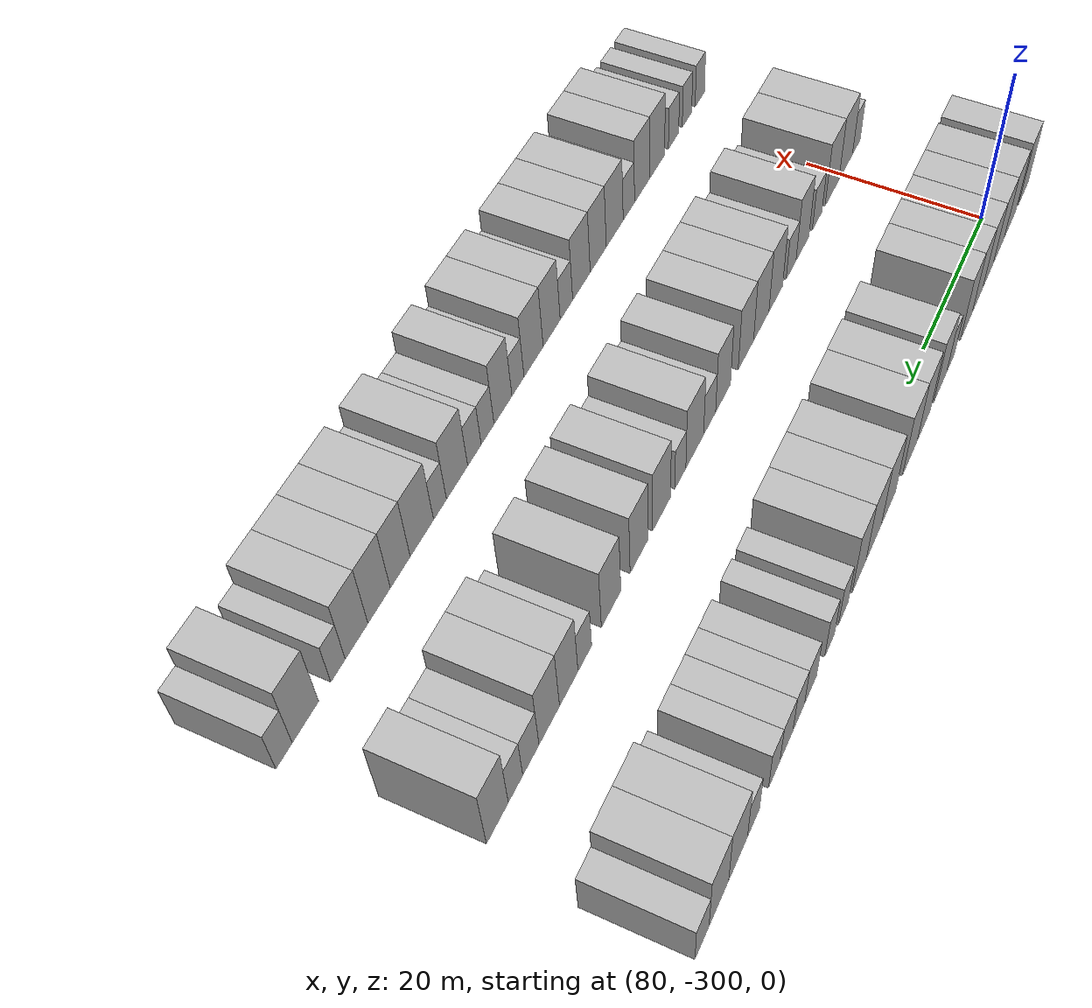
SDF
<sdf version="1.6">
 <world name="default">
  <model name="building_539">
   <static>1</static>
   <pose>82.0000 -305.3145 0 0.000000 0.000000 0.000000</pose>
   <link name="link">
    <pose>0 0 4.50 0 0 0</pose>
    <collision name="collision"><geometry><box><size>10.0000 3.7286 9.0000</size></box></geometry></collision>
    <visual name="visual">
     <cast_shadows>0</cast_shadows>
     <geometry><box><size>10.0000 3.7286 9.0000</size></box></geometry>
     <material>
      <script>
       <uri>model://HANNAS_wall/materials/scripts</uri>
       <uri>model://HANNAS_wall/materials/textures</uri>
       <name>vrc/HANNAS_wall</name>
      </script>
     </material>
    </visual>
   </link>
  </model>
  <model name="building_540">
   <static>1</static>
   <pose>82.0000 -300.2733 0 0.000000 0.000000 0.000000</pose>
   <link name="link">
    <pose>0 0 4.50 0 0 0</pose>
    <collision name="collision"><geometry><box><size>10.0000 4.3537 9.0000</size></box></geometry></collision>
    <visual name="visual">
     <cast_shadows>0</cast_shadows>
     <geometry><box><size>10.0000 4.3537 9.0000</size></box></geometry>
     <material>
      <script>
       <uri>model://HANNAS_wall/materials/scripts</uri>
       <uri>model://HANNAS_wall/materials/textures</uri>
       <name>vrc/HANNAS_wall</name>
      </script>
     </material>
    </visual>
   </link>
  </model>
  <model name="building_541">
   <static>1</static>
   <pose>82.0000 -296.1005 0 0.000000 0.000000 0.000000</pose>
   <link name="link">
    <pose>0 0 4.50 0 0 0</pose>
    <collision name="collision"><geometry><box><size>10.0000 3.9919 9.0000</size></box></geometry></collision>
    <visual name="visual">
     <cast_shadows>0</cast_shadows>
     <geometry><box><size>10.0000 3.9919 9.0000</size></box></geometry>
     <material>
      <script>
       <uri>model://HANNAS_wall/materials/scripts</uri>
       <uri>model://HANNAS_wall/materials/textures</uri>
       <name>vrc/HANNAS_wall</name>
      </script>
     </material>
    </visual>
   </link>
  </model>
  <model name="building_542">
   <static>1</static>
   <pose>82.0000 -292.2459 0 0.000000 0.000000 0.000000</pose>
   <link name="link">
    <pose>0 0 4.50 0 0 0</pose>
    <collision name="collision"><geometry><box><size>10.0000 3.7174 9.0000</size></box></geometry></collision>
    <visual name="visual">
     <cast_shadows>0</cast_shadows>
     <geometry><box><size>10.0000 3.7174 9.0000</size></box></geometry>
     <material>
      <script>
       <uri>model://HANNAS_wall/materials/scripts</uri>
       <uri>model://HANNAS_wall/materials/textures</uri>
       <name>vrc/HANNAS_wall</name>
      </script>
     </material>
    </visual>
   </link>
  </model>
  <model name="building_543">
   <static>1</static>
   <pose>82.0000 -288.5314 0 0.000000 0.000000 0.000000</pose>
   <link name="link">
    <pose>0 0 4.50 0 0 0</pose>
    <collision name="collision"><geometry><box><size>10.0000 3.7117 9.0000</size></box></geometry></collision>
    <visual name="visual">
     <cast_shadows>0</cast_shadows>
     <geometry><box><size>10.0000 3.7117 9.0000</size></box></geometry>
     <material>
      <script>
       <uri>model://HANNAS_wall/materials/scripts</uri>
       <uri>model://HANNAS_wall/materials/textures</uri>
       <name>vrc/HANNAS_wall</name>
      </script>
     </material>
    </visual>
   </link>
  </model>
  <model name="building_544">
   <static>1</static>
   <pose>82.0000 -284.6997 0 0.000000 0.000000 0.000000</pose>
   <link name="link">
    <pose>0 0 4.50 0 0 0</pose>
    <collision name="collision"><geometry><box><size>10.0000 3.9517 9.0000</size></box></geometry></collision>
    <visual name="visual">
     <cast_shadows>0</cast_shadows>
     <geometry><box><size>10.0000 3.9517 9.0000</size></box></geometry>
     <material>
      <script>
       <uri>model://HANNAS_wall/materials/scripts</uri>
       <uri>model://HANNAS_wall/materials/textures</uri>
       <name>vrc/HANNAS_wall</name>
      </script>
     </material>
    </visual>
   </link>
  </model>
  <model name="building_545">
   <static>1</static>
   <pose>82.0000 -279.4689 0 0.000000 0.000000 0.000000</pose>
   <link name="link">
    <pose>0 0 3.00 0 0 0</pose>
    <collision name="collision"><geometry><box><size>10.0000 2.5099 6.0000</size></box></geometry></collision>
    <visual name="visual">
     <cast_shadows>0</cast_shadows>
     <geometry><box><size>10.0000 2.5099 6.0000</size></box></geometry>
     <material>
      <script>
       <uri>model://HANNAS_wall/materials/scripts</uri>
       <uri>model://HANNAS_wall/materials/textures</uri>
       <name>vrc/HANNAS_wall</name>
      </script>
     </material>
    </visual>
   </link>
  </model>
  <model name="building_546">
   <static>1</static>
   <pose>82.0000 -276.1393 0 0.000000 0.000000 0.000000</pose>
   <link name="link">
    <pose>0 0 4.50 0 0 0</pose>
    <collision name="collision"><geometry><box><size>10.0000 4.1492 9.0000</size></box></geometry></collision>
    <visual name="visual">
     <cast_shadows>0</cast_shadows>
     <geometry><box><size>10.0000 4.1492 9.0000</size></box></geometry>
     <material>
      <script>
       <uri>model://HANNAS_wall/materials/scripts</uri>
       <uri>model://HANNAS_wall/materials/textures</uri>
       <name>vrc/HANNAS_wall</name>
      </script>
     </material>
    </visual>
   </link>
  </model>
  <model name="building_547">
   <static>1</static>
   <pose>82.0000 -271.0288 0 0.000000 0.000000 0.000000</pose>
   <link name="link">
    <pose>0 0 4.50 0 0 0</pose>
    <collision name="collision"><geometry><box><size>10.0000 4.0717 9.0000</size></box></geometry></collision>
    <visual name="visual">
     <cast_shadows>0</cast_shadows>
     <geometry><box><size>10.0000 4.0717 9.0000</size></box></geometry>
     <material>
      <script>
       <uri>model://HANNAS_wall/materials/scripts</uri>
       <uri>model://HANNAS_wall/materials/textures</uri>
       <name>vrc/HANNAS_wall</name>
      </script>
     </material>
    </visual>
   </link>
  </model>
  <model name="building_548">
   <static>1</static>
   <pose>82.0000 -266.7920 0 0.000000 0.000000 0.000000</pose>
   <link name="link">
    <pose>0 0 4.50 0 0 0</pose>
    <collision name="collision"><geometry><box><size>10.0000 4.4019 9.0000</size></box></geometry></collision>
    <visual name="visual">
     <cast_shadows>0</cast_shadows>
     <geometry><box><size>10.0000 4.4019 9.0000</size></box></geometry>
     <material>
      <script>
       <uri>model://HANNAS_wall/materials/scripts</uri>
       <uri>model://HANNAS_wall/materials/textures</uri>
       <name>vrc/HANNAS_wall</name>
      </script>
     </material>
    </visual>
   </link>
  </model>
  <model name="building_549">
   <static>1</static>
   <pose>82.0000 -260.5830 0 0.000000 0.000000 0.000000</pose>
   <link name="link">
    <pose>0 0 4.50 0 0 0</pose>
    <collision name="collision"><geometry><box><size>10.0000 4.0161 9.0000</size></box></geometry></collision>
    <visual name="visual">
     <cast_shadows>0</cast_shadows>
     <geometry><box><size>10.0000 4.0161 9.0000</size></box></geometry>
     <material>
      <script>
       <uri>model://HANNAS_wall/materials/scripts</uri>
       <uri>model://HANNAS_wall/materials/textures</uri>
       <name>vrc/HANNAS_wall</name>
      </script>
     </material>
    </visual>
   </link>
  </model>
  <model name="building_550">
   <static>1</static>
   <pose>82.0000 -256.4694 0 0.000000 0.000000 0.000000</pose>
   <link name="link">
    <pose>0 0 4.50 0 0 0</pose>
    <collision name="collision"><geometry><box><size>10.0000 4.2110 9.0000</size></box></geometry></collision>
    <visual name="visual">
     <cast_shadows>0</cast_shadows>
     <geometry><box><size>10.0000 4.2110 9.0000</size></box></geometry>
     <material>
      <script>
       <uri>model://HANNAS_wall/materials/scripts</uri>
       <uri>model://HANNAS_wall/materials/textures</uri>
       <name>vrc/HANNAS_wall</name>
      </script>
     </material>
    </visual>
   </link>
  </model>
  <model name="building_551">
   <static>1</static>
   <pose>82.0000 -252.4755 0 0.000000 0.000000 0.000000</pose>
   <link name="link">
    <pose>0 0 4.50 0 0 0</pose>
    <collision name="collision"><geometry><box><size>10.0000 3.7769 9.0000</size></box></geometry></collision>
    <visual name="visual">
     <cast_shadows>0</cast_shadows>
     <geometry><box><size>10.0000 3.7769 9.0000</size></box></geometry>
     <material>
      <script>
       <uri>model://HANNAS_wall/materials/scripts</uri>
       <uri>model://HANNAS_wall/materials/textures</uri>
       <name>vrc/HANNAS_wall</name>
      </script>
     </material>
    </visual>
   </link>
  </model>
  <model name="building_552">
   <static>1</static>
   <pose>82.0000 -248.3068 0 0.000000 0.000000 0.000000</pose>
   <link name="link">
    <pose>0 0 3.00 0 0 0</pose>
    <collision name="collision"><geometry><box><size>10.0000 2.5605 6.0000</size></box></geometry></collision>
    <visual name="visual">
     <cast_shadows>0</cast_shadows>
     <geometry><box><size>10.0000 2.5605 6.0000</size></box></geometry>
     <material>
      <script>
       <uri>model://HANNAS_wall/materials/scripts</uri>
       <uri>model://HANNAS_wall/materials/textures</uri>
       <name>vrc/HANNAS_wall</name>
      </script>
     </material>
    </visual>
   </link>
  </model>
  <model name="building_553">
   <static>1</static>
   <pose>82.0000 -244.7973 0 0.000000 0.000000 0.000000</pose>
   <link name="link">
    <pose>0 0 3.00 0 0 0</pose>
    <collision name="collision"><geometry><box><size>10.0000 2.4585 6.0000</size></box></geometry></collision>
    <visual name="visual">
     <cast_shadows>0</cast_shadows>
     <geometry><box><size>10.0000 2.4585 6.0000</size></box></geometry>
     <material>
      <script>
       <uri>model://HANNAS_wall/materials/scripts</uri>
       <uri>model://HANNAS_wall/materials/textures</uri>
       <name>vrc/HANNAS_wall</name>
      </script>
     </material>
    </visual>
   </link>
  </model>
  <model name="building_554">
   <static>1</static>
   <pose>82.0000 -240.1033 0 0.000000 0.000000 0.000000</pose>
   <link name="link">
    <pose>0 0 3.00 0 0 0</pose>
    <collision name="collision"><geometry><box><size>10.0000 2.9296 6.0000</size></box></geometry></collision>
    <visual name="visual">
     <cast_shadows>0</cast_shadows>
     <geometry><box><size>10.0000 2.9296 6.0000</size></box></geometry>
     <material>
      <script>
       <uri>model://HANNAS_wall/materials/scripts</uri>
       <uri>model://HANNAS_wall/materials/textures</uri>
       <name>vrc/HANNAS_wall</name>
      </script>
     </material>
    </visual>
   </link>
  </model>
  <model name="building_555">
   <static>1</static>
   <pose>82.0000 -237.2563 0 0.000000 0.000000 0.000000</pose>
   <link name="link">
    <pose>0 0 3.00 0 0 0</pose>
    <collision name="collision"><geometry><box><size>10.0000 2.7645 6.0000</size></box></geometry></collision>
    <visual name="visual">
     <cast_shadows>0</cast_shadows>
     <geometry><box><size>10.0000 2.7645 6.0000</size></box></geometry>
     <material>
      <script>
       <uri>model://HANNAS_wall/materials/scripts</uri>
       <uri>model://HANNAS_wall/materials/textures</uri>
       <name>vrc/HANNAS_wall</name>
      </script>
     </material>
    </visual>
   </link>
  </model>
  <model name="building_556">
   <static>1</static>
   <pose>82.0000 -234.3819 0 0.000000 0.000000 0.000000</pose>
   <link name="link">
    <pose>0 0 3.00 0 0 0</pose>
    <collision name="collision"><geometry><box><size>10.0000 2.9842 6.0000</size></box></geometry></collision>
    <visual name="visual">
     <cast_shadows>0</cast_shadows>
     <geometry><box><size>10.0000 2.9842 6.0000</size></box></geometry>
     <material>
      <script>
       <uri>model://HANNAS_wall/materials/scripts</uri>
       <uri>model://HANNAS_wall/materials/textures</uri>
       <name>vrc/HANNAS_wall</name>
      </script>
     </material>
    </visual>
   </link>
  </model>
  <model name="building_557">
   <static>1</static>
   <pose>82.0000 -231.5974 0 0.000000 0.000000 0.000000</pose>
   <link name="link">
    <pose>0 0 3.00 0 0 0</pose>
    <collision name="collision"><geometry><box><size>10.0000 2.5849 6.0000</size></box></geometry></collision>
    <visual name="visual">
     <cast_shadows>0</cast_shadows>
     <geometry><box><size>10.0000 2.5849 6.0000</size></box></geometry>
     <material>
      <script>
       <uri>model://HANNAS_wall/materials/scripts</uri>
       <uri>model://HANNAS_wall/materials/textures</uri>
       <name>vrc/HANNAS_wall</name>
      </script>
     </material>
    </visual>
   </link>
  </model>
  <model name="building_558">
   <static>1</static>
   <pose>82.0000 -226.9975 0 0.000000 0.000000 0.000000</pose>
   <link name="link">
    <pose>0 0 3.00 0 0 0</pose>
    <collision name="collision"><geometry><box><size>10.0000 2.6149 6.0000</size></box></geometry></collision>
    <visual name="visual">
     <cast_shadows>0</cast_shadows>
     <geometry><box><size>10.0000 2.6149 6.0000</size></box></geometry>
     <material>
      <script>
       <uri>model://HANNAS_wall/materials/scripts</uri>
       <uri>model://HANNAS_wall/materials/textures</uri>
       <name>vrc/HANNAS_wall</name>
      </script>
     </material>
    </visual>
   </link>
  </model>
  <model name="building_559">
   <static>1</static>
   <pose>82.0000 -223.7078 0 0.000000 0.000000 0.000000</pose>
   <link name="link">
    <pose>0 0 4.50 0 0 0</pose>
    <collision name="collision"><geometry><box><size>10.0000 3.9644 9.0000</size></box></geometry></collision>
    <visual name="visual">
     <cast_shadows>0</cast_shadows>
     <geometry><box><size>10.0000 3.9644 9.0000</size></box></geometry>
     <material>
      <script>
       <uri>model://HANNAS_wall/materials/scripts</uri>
       <uri>model://HANNAS_wall/materials/textures</uri>
       <name>vrc/HANNAS_wall</name>
      </script>
     </material>
    </visual>
   </link>
  </model>
  <model name="building_560">
   <static>1</static>
   <pose>82.0000 -219.7251 0 0.000000 0.000000 0.000000</pose>
   <link name="link">
    <pose>0 0 4.50 0 0 0</pose>
    <collision name="collision"><geometry><box><size>10.0000 4.0011 9.0000</size></box></geometry></collision>
    <visual name="visual">
     <cast_shadows>0</cast_shadows>
     <geometry><box><size>10.0000 4.0011 9.0000</size></box></geometry>
     <material>
      <script>
       <uri>model://HANNAS_wall/materials/scripts</uri>
       <uri>model://HANNAS_wall/materials/textures</uri>
       <name>vrc/HANNAS_wall</name>
      </script>
     </material>
    </visual>
   </link>
  </model>
  <model name="building_561">
   <static>1</static>
   <pose>82.0000 -216.3275 0 0.000000 0.000000 0.000000</pose>
   <link name="link">
    <pose>0 0 3.00 0 0 0</pose>
    <collision name="collision"><geometry><box><size>10.0000 2.7940 6.0000</size></box></geometry></collision>
    <visual name="visual">
     <cast_shadows>0</cast_shadows>
     <geometry><box><size>10.0000 2.7940 6.0000</size></box></geometry>
     <material>
      <script>
       <uri>model://HANNAS_wall/materials/scripts</uri>
       <uri>model://HANNAS_wall/materials/textures</uri>
       <name>vrc/HANNAS_wall</name>
      </script>
     </material>
    </visual>
   </link>
  </model>
  <model name="building_712">
   <static>1</static>
   <pose>101.0000 -304.7376 0 0.000000 0.000000 0.000000</pose>
   <link name="link">
    <pose>0 0 3.00 0 0 0</pose>
    <collision name="collision"><geometry><box><size>10.0000 2.4971 6.0000</size></box></geometry></collision>
    <visual name="visual">
     <cast_shadows>0</cast_shadows>
     <geometry><box><size>10.0000 2.4971 6.0000</size></box></geometry>
     <material>
      <script>
       <uri>model://HANNAS_wall/materials/scripts</uri>
       <uri>model://HANNAS_wall/materials/textures</uri>
       <name>vrc/HANNAS_wall</name>
      </script>
     </material>
    </visual>
   </link>
  </model>
  <model name="building_713">
   <static>1</static>
   <pose>101.0000 -301.3148 0 0.000000 0.000000 0.000000</pose>
   <link name="link">
    <pose>0 0 4.50 0 0 0</pose>
    <collision name="collision"><geometry><box><size>10.0000 4.3486 9.0000</size></box></geometry></collision>
    <visual name="visual">
     <cast_shadows>0</cast_shadows>
     <geometry><box><size>10.0000 4.3486 9.0000</size></box></geometry>
     <material>
      <script>
       <uri>model://HANNAS_wall/materials/scripts</uri>
       <uri>model://HANNAS_wall/materials/textures</uri>
       <name>vrc/HANNAS_wall</name>
      </script>
     </material>
    </visual>
   </link>
  </model>
  <model name="building_714">
   <static>1</static>
   <pose>101.0000 -296.9685 0 0.000000 0.000000 0.000000</pose>
   <link name="link">
    <pose>0 0 4.50 0 0 0</pose>
    <collision name="collision"><geometry><box><size>10.0000 4.3439 9.0000</size></box></geometry></collision>
    <visual name="visual">
     <cast_shadows>0</cast_shadows>
     <geometry><box><size>10.0000 4.3439 9.0000</size></box></geometry>
     <material>
      <script>
       <uri>model://HANNAS_wall/materials/scripts</uri>
       <uri>model://HANNAS_wall/materials/textures</uri>
       <name>vrc/HANNAS_wall</name>
      </script>
     </material>
    </visual>
   </link>
  </model>
  <model name="building_715">
   <static>1</static>
   <pose>101.0000 -292.3364 0 0.000000 0.000000 0.000000</pose>
   <link name="link">
    <pose>0 0 3.00 0 0 0</pose>
    <collision name="collision"><geometry><box><size>10.0000 2.9203 6.0000</size></box></geometry></collision>
    <visual name="visual">
     <cast_shadows>0</cast_shadows>
     <geometry><box><size>10.0000 2.9203 6.0000</size></box></geometry>
     <material>
      <script>
       <uri>model://HANNAS_wall/materials/scripts</uri>
       <uri>model://HANNAS_wall/materials/textures</uri>
       <name>vrc/HANNAS_wall</name>
      </script>
     </material>
    </visual>
   </link>
  </model>
  <model name="building_716">
   <static>1</static>
   <pose>101.0000 -287.9685 0 0.000000 0.000000 0.000000</pose>
   <link name="link">
    <pose>0 0 4.50 0 0 0</pose>
    <collision name="collision"><geometry><box><size>10.0000 3.8154 9.0000</size></box></geometry></collision>
    <visual name="visual">
     <cast_shadows>0</cast_shadows>
     <geometry><box><size>10.0000 3.8154 9.0000</size></box></geometry>
     <material>
      <script>
       <uri>model://HANNAS_wall/materials/scripts</uri>
       <uri>model://HANNAS_wall/materials/textures</uri>
       <name>vrc/HANNAS_wall</name>
      </script>
     </material>
    </visual>
   </link>
  </model>
  <model name="building_717">
   <static>1</static>
   <pose>101.0000 -284.6335 0 0.000000 0.000000 0.000000</pose>
   <link name="link">
    <pose>0 0 3.00 0 0 0</pose>
    <collision name="collision"><geometry><box><size>10.0000 2.8546 6.0000</size></box></geometry></collision>
    <visual name="visual">
     <cast_shadows>0</cast_shadows>
     <geometry><box><size>10.0000 2.8546 6.0000</size></box></geometry>
     <material>
      <script>
       <uri>model://HANNAS_wall/materials/scripts</uri>
       <uri>model://HANNAS_wall/materials/textures</uri>
       <name>vrc/HANNAS_wall</name>
      </script>
     </material>
    </visual>
   </link>
  </model>
  <model name="building_718">
   <static>1</static>
   <pose>101.0000 -280.2770 0 0.000000 0.000000 0.000000</pose>
   <link name="link">
    <pose>0 0 4.50 0 0 0</pose>
    <collision name="collision"><geometry><box><size>10.0000 3.8584 9.0000</size></box></geometry></collision>
    <visual name="visual">
     <cast_shadows>0</cast_shadows>
     <geometry><box><size>10.0000 3.8584 9.0000</size></box></geometry>
     <material>
      <script>
       <uri>model://HANNAS_wall/materials/scripts</uri>
       <uri>model://HANNAS_wall/materials/textures</uri>
       <name>vrc/HANNAS_wall</name>
      </script>
     </material>
    </visual>
   </link>
  </model>
  <model name="building_719">
   <static>1</static>
   <pose>101.0000 -276.2487 0 0.000000 0.000000 0.000000</pose>
   <link name="link">
    <pose>0 0 4.50 0 0 0</pose>
    <collision name="collision"><geometry><box><size>10.0000 4.1982 9.0000</size></box></geometry></collision>
    <visual name="visual">
     <cast_shadows>0</cast_shadows>
     <geometry><box><size>10.0000 4.1982 9.0000</size></box></geometry>
     <material>
      <script>
       <uri>model://HANNAS_wall/materials/scripts</uri>
       <uri>model://HANNAS_wall/materials/textures</uri>
       <name>vrc/HANNAS_wall</name>
      </script>
     </material>
    </visual>
   </link>
  </model>
  <model name="building_720">
   <static>1</static>
   <pose>101.0000 -272.1033 0 0.000000 0.000000 0.000000</pose>
   <link name="link">
    <pose>0 0 4.50 0 0 0</pose>
    <collision name="collision"><geometry><box><size>10.0000 4.0926 9.0000</size></box></geometry></collision>
    <visual name="visual">
     <cast_shadows>0</cast_shadows>
     <geometry><box><size>10.0000 4.0926 9.0000</size></box></geometry>
     <material>
      <script>
       <uri>model://HANNAS_wall/materials/scripts</uri>
       <uri>model://HANNAS_wall/materials/textures</uri>
       <name>vrc/HANNAS_wall</name>
      </script>
     </material>
    </visual>
   </link>
  </model>
  <model name="building_721">
   <static>1</static>
   <pose>101.0000 -266.1704 0 0.000000 0.000000 0.000000</pose>
   <link name="link">
    <pose>0 0 4.50 0 0 0</pose>
    <collision name="collision"><geometry><box><size>10.0000 3.7732 9.0000</size></box></geometry></collision>
    <visual name="visual">
     <cast_shadows>0</cast_shadows>
     <geometry><box><size>10.0000 3.7732 9.0000</size></box></geometry>
     <material>
      <script>
       <uri>model://HANNAS_wall/materials/scripts</uri>
       <uri>model://HANNAS_wall/materials/textures</uri>
       <name>vrc/HANNAS_wall</name>
      </script>
     </material>
    </visual>
   </link>
  </model>
  <model name="building_722">
   <static>1</static>
   <pose>101.0000 -262.7921 0 0.000000 0.000000 0.000000</pose>
   <link name="link">
    <pose>0 0 3.00 0 0 0</pose>
    <collision name="collision"><geometry><box><size>10.0000 2.9834 6.0000</size></box></geometry></collision>
    <visual name="visual">
     <cast_shadows>0</cast_shadows>
     <geometry><box><size>10.0000 2.9834 6.0000</size></box></geometry>
     <material>
      <script>
       <uri>model://HANNAS_wall/materials/scripts</uri>
       <uri>model://HANNAS_wall/materials/textures</uri>
       <name>vrc/HANNAS_wall</name>
      </script>
     </material>
    </visual>
   </link>
  </model>
  <model name="building_723">
   <static>1</static>
   <pose>101.0000 -259.1527 0 0.000000 0.000000 0.000000</pose>
   <link name="link">
    <pose>0 0 4.50 0 0 0</pose>
    <collision name="collision"><geometry><box><size>10.0000 4.2952 9.0000</size></box></geometry></collision>
    <visual name="visual">
     <cast_shadows>0</cast_shadows>
     <geometry><box><size>10.0000 4.2952 9.0000</size></box></geometry>
     <material>
      <script>
       <uri>model://HANNAS_wall/materials/scripts</uri>
       <uri>model://HANNAS_wall/materials/textures</uri>
       <name>vrc/HANNAS_wall</name>
      </script>
     </material>
    </visual>
   </link>
  </model>
  <model name="building_724">
   <static>1</static>
   <pose>101.0000 -255.7136 0 0.000000 0.000000 0.000000</pose>
   <link name="link">
    <pose>0 0 3.00 0 0 0</pose>
    <collision name="collision"><geometry><box><size>10.0000 2.5831 6.0000</size></box></geometry></collision>
    <visual name="visual">
     <cast_shadows>0</cast_shadows>
     <geometry><box><size>10.0000 2.5831 6.0000</size></box></geometry>
     <material>
      <script>
       <uri>model://HANNAS_wall/materials/scripts</uri>
       <uri>model://HANNAS_wall/materials/textures</uri>
       <name>vrc/HANNAS_wall</name>
      </script>
     </material>
    </visual>
   </link>
  </model>
  <model name="building_725">
   <static>1</static>
   <pose>101.0000 -251.3791 0 0.000000 0.000000 0.000000</pose>
   <link name="link">
    <pose>0 0 4.50 0 0 0</pose>
    <collision name="collision"><geometry><box><size>10.0000 4.0859 9.0000</size></box></geometry></collision>
    <visual name="visual">
     <cast_shadows>0</cast_shadows>
     <geometry><box><size>10.0000 4.0859 9.0000</size></box></geometry>
     <material>
      <script>
       <uri>model://HANNAS_wall/materials/scripts</uri>
       <uri>model://HANNAS_wall/materials/textures</uri>
       <name>vrc/HANNAS_wall</name>
      </script>
     </material>
    </visual>
   </link>
  </model>
  <model name="building_726">
   <static>1</static>
   <pose>101.0000 -246.3431 0 0.000000 0.000000 0.000000</pose>
   <link name="link">
    <pose>0 0 4.50 0 0 0</pose>
    <collision name="collision"><geometry><box><size>10.0000 3.9861 9.0000</size></box></geometry></collision>
    <visual name="visual">
     <cast_shadows>0</cast_shadows>
     <geometry><box><size>10.0000 3.9861 9.0000</size></box></geometry>
     <material>
      <script>
       <uri>model://HANNAS_wall/materials/scripts</uri>
       <uri>model://HANNAS_wall/materials/textures</uri>
       <name>vrc/HANNAS_wall</name>
      </script>
     </material>
    </visual>
   </link>
  </model>
  <model name="building_727">
   <static>1</static>
   <pose>101.0000 -240.3124 0 0.000000 0.000000 0.000000</pose>
   <link name="link">
    <pose>0 0 4.50 0 0 0</pose>
    <collision name="collision"><geometry><box><size>10.0000 4.0752 9.0000</size></box></geometry></collision>
    <visual name="visual">
     <cast_shadows>0</cast_shadows>
     <geometry><box><size>10.0000 4.0752 9.0000</size></box></geometry>
     <material>
      <script>
       <uri>model://HANNAS_wall/materials/scripts</uri>
       <uri>model://HANNAS_wall/materials/textures</uri>
       <name>vrc/HANNAS_wall</name>
      </script>
     </material>
    </visual>
   </link>
  </model>
  <model name="building_728">
   <static>1</static>
   <pose>101.0000 -234.9077 0 0.000000 0.000000 0.000000</pose>
   <link name="link">
    <pose>0 0 3.00 0 0 0</pose>
    <collision name="collision"><geometry><box><size>10.0000 2.7342 6.0000</size></box></geometry></collision>
    <visual name="visual">
     <cast_shadows>0</cast_shadows>
     <geometry><box><size>10.0000 2.7342 6.0000</size></box></geometry>
     <material>
      <script>
       <uri>model://HANNAS_wall/materials/scripts</uri>
       <uri>model://HANNAS_wall/materials/textures</uri>
       <name>vrc/HANNAS_wall</name>
      </script>
     </material>
    </visual>
   </link>
  </model>
  <model name="building_729">
   <static>1</static>
   <pose>101.0000 -231.7296 0 0.000000 0.000000 0.000000</pose>
   <link name="link">
    <pose>0 0 4.50 0 0 0</pose>
    <collision name="collision"><geometry><box><size>10.0000 3.6222 9.0000</size></box></geometry></collision>
    <visual name="visual">
     <cast_shadows>0</cast_shadows>
     <geometry><box><size>10.0000 3.6222 9.0000</size></box></geometry>
     <material>
      <script>
       <uri>model://HANNAS_wall/materials/scripts</uri>
       <uri>model://HANNAS_wall/materials/textures</uri>
       <name>vrc/HANNAS_wall</name>
      </script>
     </material>
    </visual>
   </link>
  </model>
  <model name="building_730">
   <static>1</static>
   <pose>101.0000 -227.9672 0 0.000000 0.000000 0.000000</pose>
   <link name="link">
    <pose>0 0 4.50 0 0 0</pose>
    <collision name="collision"><geometry><box><size>10.0000 3.9025 9.0000</size></box></geometry></collision>
    <visual name="visual">
     <cast_shadows>0</cast_shadows>
     <geometry><box><size>10.0000 3.9025 9.0000</size></box></geometry>
     <material>
      <script>
       <uri>model://HANNAS_wall/materials/scripts</uri>
       <uri>model://HANNAS_wall/materials/textures</uri>
       <name>vrc/HANNAS_wall</name>
      </script>
     </material>
    </visual>
   </link>
  </model>
  <model name="building_731">
   <static>1</static>
   <pose>101.0000 -224.5185 0 0.000000 0.000000 0.000000</pose>
   <link name="link">
    <pose>0 0 3.00 0 0 0</pose>
    <collision name="collision"><geometry><box><size>10.0000 2.9949 6.0000</size></box></geometry></collision>
    <visual name="visual">
     <cast_shadows>0</cast_shadows>
     <geometry><box><size>10.0000 2.9949 6.0000</size></box></geometry>
     <material>
      <script>
       <uri>model://HANNAS_wall/materials/scripts</uri>
       <uri>model://HANNAS_wall/materials/textures</uri>
       <name>vrc/HANNAS_wall</name>
      </script>
     </material>
    </visual>
   </link>
  </model>
  <model name="building_732">
   <static>1</static>
   <pose>101.0000 -221.7173 0 0.000000 0.000000 0.000000</pose>
   <link name="link">
    <pose>0 0 3.00 0 0 0</pose>
    <collision name="collision"><geometry><box><size>10.0000 2.6074 6.0000</size></box></geometry></collision>
    <visual name="visual">
     <cast_shadows>0</cast_shadows>
     <geometry><box><size>10.0000 2.6074 6.0000</size></box></geometry>
     <material>
      <script>
       <uri>model://HANNAS_wall/materials/scripts</uri>
       <uri>model://HANNAS_wall/materials/textures</uri>
       <name>vrc/HANNAS_wall</name>
      </script>
     </material>
    </visual>
   </link>
  </model>
  <model name="building_733">
   <static>1</static>
   <pose>101.0000 -218.4910 0 0.000000 0.000000 0.000000</pose>
   <link name="link">
    <pose>0 0 4.50 0 0 0</pose>
    <collision name="collision"><geometry><box><size>10.0000 3.8451 9.0000</size></box></geometry></collision>
    <visual name="visual">
     <cast_shadows>0</cast_shadows>
     <geometry><box><size>10.0000 3.8451 9.0000</size></box></geometry>
     <material>
      <script>
       <uri>model://HANNAS_wall/materials/scripts</uri>
       <uri>model://HANNAS_wall/materials/textures</uri>
       <name>vrc/HANNAS_wall</name>
      </script>
     </material>
    </visual>
   </link>
  </model>
  <model name="building_893">
   <static>1</static>
   <pose>120.0000 -304.8566 0 0.000000 0.000000 0.000000</pose>
   <link name="link">
    <pose>0 0 3.00 0 0 0</pose>
    <collision name="collision"><geometry><box><size>10.0000 2.6732 6.0000</size></box></geometry></collision>
    <visual name="visual">
     <cast_shadows>0</cast_shadows>
     <geometry><box><size>10.0000 2.6732 6.0000</size></box></geometry>
     <material>
      <script>
       <uri>model://HANNAS_wall/materials/scripts</uri>
       <uri>model://HANNAS_wall/materials/textures</uri>
       <name>vrc/HANNAS_wall</name>
      </script>
     </material>
    </visual>
   </link>
  </model>
  <model name="building_894">
   <static>1</static>
   <pose>120.0000 -301.1806 0 0.000000 0.000000 0.000000</pose>
   <link name="link">
    <pose>0 0 3.00 0 0 0</pose>
    <collision name="collision"><geometry><box><size>10.0000 2.6789 6.0000</size></box></geometry></collision>
    <visual name="visual">
     <cast_shadows>0</cast_shadows>
     <geometry><box><size>10.0000 2.6789 6.0000</size></box></geometry>
     <material>
      <script>
       <uri>model://HANNAS_wall/materials/scripts</uri>
       <uri>model://HANNAS_wall/materials/textures</uri>
       <name>vrc/HANNAS_wall</name>
      </script>
     </material>
    </visual>
   </link>
  </model>
  <model name="building_895">
   <static>1</static>
   <pose>120.0000 -297.4059 0 0.000000 0.000000 0.000000</pose>
   <link name="link">
    <pose>0 0 3.00 0 0 0</pose>
    <collision name="collision"><geometry><box><size>10.0000 2.8705 6.0000</size></box></geometry></collision>
    <visual name="visual">
     <cast_shadows>0</cast_shadows>
     <geometry><box><size>10.0000 2.8705 6.0000</size></box></geometry>
     <material>
      <script>
       <uri>model://HANNAS_wall/materials/scripts</uri>
       <uri>model://HANNAS_wall/materials/textures</uri>
       <name>vrc/HANNAS_wall</name>
      </script>
     </material>
    </visual>
   </link>
  </model>
  <model name="building_896">
   <static>1</static>
   <pose>120.0000 -292.9517 0 0.000000 0.000000 0.000000</pose>
   <link name="link">
    <pose>0 0 4.50 0 0 0</pose>
    <collision name="collision"><geometry><box><size>10.0000 4.0379 9.0000</size></box></geometry></collision>
    <visual name="visual">
     <cast_shadows>0</cast_shadows>
     <geometry><box><size>10.0000 4.0379 9.0000</size></box></geometry>
     <material>
      <script>
       <uri>model://HANNAS_wall/materials/scripts</uri>
       <uri>model://HANNAS_wall/materials/textures</uri>
       <name>vrc/HANNAS_wall</name>
      </script>
     </material>
    </visual>
   </link>
  </model>
  <model name="building_897">
   <static>1</static>
   <pose>120.0000 -288.9229 0 0.000000 0.000000 0.000000</pose>
   <link name="link">
    <pose>0 0 4.50 0 0 0</pose>
    <collision name="collision"><geometry><box><size>10.0000 4.0196 9.0000</size></box></geometry></collision>
    <visual name="visual">
     <cast_shadows>0</cast_shadows>
     <geometry><box><size>10.0000 4.0196 9.0000</size></box></geometry>
     <material>
      <script>
       <uri>model://HANNAS_wall/materials/scripts</uri>
       <uri>model://HANNAS_wall/materials/textures</uri>
       <name>vrc/HANNAS_wall</name>
      </script>
     </material>
    </visual>
   </link>
  </model>
  <model name="building_898">
   <static>1</static>
   <pose>120.0000 -285.4463 0 0.000000 0.000000 0.000000</pose>
   <link name="link">
    <pose>0 0 3.00 0 0 0</pose>
    <collision name="collision"><geometry><box><size>10.0000 2.9335 6.0000</size></box></geometry></collision>
    <visual name="visual">
     <cast_shadows>0</cast_shadows>
     <geometry><box><size>10.0000 2.9335 6.0000</size></box></geometry>
     <material>
      <script>
       <uri>model://HANNAS_wall/materials/scripts</uri>
       <uri>model://HANNAS_wall/materials/textures</uri>
       <name>vrc/HANNAS_wall</name>
      </script>
     </material>
    </visual>
   </link>
  </model>
  <model name="building_899">
   <static>1</static>
   <pose>120.0000 -281.8532 0 0.000000 0.000000 0.000000</pose>
   <link name="link">
    <pose>0 0 4.50 0 0 0</pose>
    <collision name="collision"><geometry><box><size>10.0000 4.2529 9.0000</size></box></geometry></collision>
    <visual name="visual">
     <cast_shadows>0</cast_shadows>
     <geometry><box><size>10.0000 4.2529 9.0000</size></box></geometry>
     <material>
      <script>
       <uri>model://HANNAS_wall/materials/scripts</uri>
       <uri>model://HANNAS_wall/materials/textures</uri>
       <name>vrc/HANNAS_wall</name>
      </script>
     </material>
    </visual>
   </link>
  </model>
  <model name="building_900">
   <static>1</static>
   <pose>120.0000 -277.7587 0 0.000000 0.000000 0.000000</pose>
   <link name="link">
    <pose>0 0 4.50 0 0 0</pose>
    <collision name="collision"><geometry><box><size>10.0000 3.9361 9.0000</size></box></geometry></collision>
    <visual name="visual">
     <cast_shadows>0</cast_shadows>
     <geometry><box><size>10.0000 3.9361 9.0000</size></box></geometry>
     <material>
      <script>
       <uri>model://HANNAS_wall/materials/scripts</uri>
       <uri>model://HANNAS_wall/materials/textures</uri>
       <name>vrc/HANNAS_wall</name>
      </script>
     </material>
    </visual>
   </link>
  </model>
  <model name="building_901">
   <static>1</static>
   <pose>120.0000 -273.7004 0 0.000000 0.000000 0.000000</pose>
   <link name="link">
    <pose>0 0 4.50 0 0 0</pose>
    <collision name="collision"><geometry><box><size>10.0000 4.1806 9.0000</size></box></geometry></collision>
    <visual name="visual">
     <cast_shadows>0</cast_shadows>
     <geometry><box><size>10.0000 4.1806 9.0000</size></box></geometry>
     <material>
      <script>
       <uri>model://HANNAS_wall/materials/scripts</uri>
       <uri>model://HANNAS_wall/materials/textures</uri>
       <name>vrc/HANNAS_wall</name>
      </script>
     </material>
    </visual>
   </link>
  </model>
  <model name="building_902">
   <static>1</static>
   <pose>120.0000 -270.1553 0 0.000000 0.000000 0.000000</pose>
   <link name="link">
    <pose>0 0 3.00 0 0 0</pose>
    <collision name="collision"><geometry><box><size>10.0000 2.9096 6.0000</size></box></geometry></collision>
    <visual name="visual">
     <cast_shadows>0</cast_shadows>
     <geometry><box><size>10.0000 2.9096 6.0000</size></box></geometry>
     <material>
      <script>
       <uri>model://HANNAS_wall/materials/scripts</uri>
       <uri>model://HANNAS_wall/materials/textures</uri>
       <name>vrc/HANNAS_wall</name>
      </script>
     </material>
    </visual>
   </link>
  </model>
  <model name="building_903">
   <static>1</static>
   <pose>120.0000 -266.7640 0 0.000000 0.000000 0.000000</pose>
   <link name="link">
    <pose>0 0 4.50 0 0 0</pose>
    <collision name="collision"><geometry><box><size>10.0000 3.8731 9.0000</size></box></geometry></collision>
    <visual name="visual">
     <cast_shadows>0</cast_shadows>
     <geometry><box><size>10.0000 3.8731 9.0000</size></box></geometry>
     <material>
      <script>
       <uri>model://HANNAS_wall/materials/scripts</uri>
       <uri>model://HANNAS_wall/materials/textures</uri>
       <name>vrc/HANNAS_wall</name>
      </script>
     </material>
    </visual>
   </link>
  </model>
  <model name="building_904">
   <static>1</static>
   <pose>120.0000 -262.7098 0 0.000000 0.000000 0.000000</pose>
   <link name="link">
    <pose>0 0 4.50 0 0 0</pose>
    <collision name="collision"><geometry><box><size>10.0000 4.2352 9.0000</size></box></geometry></collision>
    <visual name="visual">
     <cast_shadows>0</cast_shadows>
     <geometry><box><size>10.0000 4.2352 9.0000</size></box></geometry>
     <material>
      <script>
       <uri>model://HANNAS_wall/materials/scripts</uri>
       <uri>model://HANNAS_wall/materials/textures</uri>
       <name>vrc/HANNAS_wall</name>
      </script>
     </material>
    </visual>
   </link>
  </model>
  <model name="building_905">
   <static>1</static>
   <pose>120.0000 -259.2835 0 0.000000 0.000000 0.000000</pose>
   <link name="link">
    <pose>0 0 3.00 0 0 0</pose>
    <collision name="collision"><geometry><box><size>10.0000 2.6173 6.0000</size></box></geometry></collision>
    <visual name="visual">
     <cast_shadows>0</cast_shadows>
     <geometry><box><size>10.0000 2.6173 6.0000</size></box></geometry>
     <material>
      <script>
       <uri>model://HANNAS_wall/materials/scripts</uri>
       <uri>model://HANNAS_wall/materials/textures</uri>
       <name>vrc/HANNAS_wall</name>
      </script>
     </material>
    </visual>
   </link>
  </model>
  <model name="building_906">
   <static>1</static>
   <pose>120.0000 -256.0937 0 0.000000 0.000000 0.000000</pose>
   <link name="link">
    <pose>0 0 4.50 0 0 0</pose>
    <collision name="collision"><geometry><box><size>10.0000 3.7623 9.0000</size></box></geometry></collision>
    <visual name="visual">
     <cast_shadows>0</cast_shadows>
     <geometry><box><size>10.0000 3.7623 9.0000</size></box></geometry>
     <material>
      <script>
       <uri>model://HANNAS_wall/materials/scripts</uri>
       <uri>model://HANNAS_wall/materials/textures</uri>
       <name>vrc/HANNAS_wall</name>
      </script>
     </material>
    </visual>
   </link>
  </model>
  <model name="building_907">
   <static>1</static>
   <pose>120.0000 -252.8815 0 0.000000 0.000000 0.000000</pose>
   <link name="link">
    <pose>0 0 3.00 0 0 0</pose>
    <collision name="collision"><geometry><box><size>10.0000 2.6619 6.0000</size></box></geometry></collision>
    <visual name="visual">
     <cast_shadows>0</cast_shadows>
     <geometry><box><size>10.0000 2.6619 6.0000</size></box></geometry>
     <material>
      <script>
       <uri>model://HANNAS_wall/materials/scripts</uri>
       <uri>model://HANNAS_wall/materials/textures</uri>
       <name>vrc/HANNAS_wall</name>
      </script>
     </material>
    </visual>
   </link>
  </model>
  <model name="building_908">
   <static>1</static>
   <pose>120.0000 -250.1839 0 0.000000 0.000000 0.000000</pose>
   <link name="link">
    <pose>0 0 3.00 0 0 0</pose>
    <collision name="collision"><geometry><box><size>10.0000 2.7333 6.0000</size></box></geometry></collision>
    <visual name="visual">
     <cast_shadows>0</cast_shadows>
     <geometry><box><size>10.0000 2.7333 6.0000</size></box></geometry>
     <material>
      <script>
       <uri>model://HANNAS_wall/materials/scripts</uri>
       <uri>model://HANNAS_wall/materials/textures</uri>
       <name>vrc/HANNAS_wall</name>
      </script>
     </material>
    </visual>
   </link>
  </model>
  <model name="building_909">
   <static>1</static>
   <pose>120.0000 -246.7274 0 0.000000 0.000000 0.000000</pose>
   <link name="link">
    <pose>0 0 4.50 0 0 0</pose>
    <collision name="collision"><geometry><box><size>10.0000 4.1797 9.0000</size></box></geometry></collision>
    <visual name="visual">
     <cast_shadows>0</cast_shadows>
     <geometry><box><size>10.0000 4.1797 9.0000</size></box></geometry>
     <material>
      <script>
       <uri>model://HANNAS_wall/materials/scripts</uri>
       <uri>model://HANNAS_wall/materials/textures</uri>
       <name>vrc/HANNAS_wall</name>
      </script>
     </material>
    </visual>
   </link>
  </model>
  <model name="building_910">
   <static>1</static>
   <pose>120.0000 -243.3982 0 0.000000 0.000000 0.000000</pose>
   <link name="link">
    <pose>0 0 3.00 0 0 0</pose>
    <collision name="collision"><geometry><box><size>10.0000 2.4787 6.0000</size></box></geometry></collision>
    <visual name="visual">
     <cast_shadows>0</cast_shadows>
     <geometry><box><size>10.0000 2.4787 6.0000</size></box></geometry>
     <material>
      <script>
       <uri>model://HANNAS_wall/materials/scripts</uri>
       <uri>model://HANNAS_wall/materials/textures</uri>
       <name>vrc/HANNAS_wall</name>
      </script>
     </material>
    </visual>
   </link>
  </model>
  <model name="building_911">
   <static>1</static>
   <pose>120.0000 -239.9658 0 0.000000 0.000000 0.000000</pose>
   <link name="link">
    <pose>0 0 4.50 0 0 0</pose>
    <collision name="collision"><geometry><box><size>10.0000 4.3863 9.0000</size></box></geometry></collision>
    <visual name="visual">
     <cast_shadows>0</cast_shadows>
     <geometry><box><size>10.0000 4.3863 9.0000</size></box></geometry>
     <material>
      <script>
       <uri>model://HANNAS_wall/materials/scripts</uri>
       <uri>model://HANNAS_wall/materials/textures</uri>
       <name>vrc/HANNAS_wall</name>
      </script>
     </material>
    </visual>
   </link>
  </model>
  <model name="building_912">
   <static>1</static>
   <pose>120.0000 -235.9681 0 0.000000 0.000000 0.000000</pose>
   <link name="link">
    <pose>0 0 4.50 0 0 0</pose>
    <collision name="collision"><geometry><box><size>10.0000 3.6091 9.0000</size></box></geometry></collision>
    <visual name="visual">
     <cast_shadows>0</cast_shadows>
     <geometry><box><size>10.0000 3.6091 9.0000</size></box></geometry>
     <material>
      <script>
       <uri>model://HANNAS_wall/materials/scripts</uri>
       <uri>model://HANNAS_wall/materials/textures</uri>
       <name>vrc/HANNAS_wall</name>
      </script>
     </material>
    </visual>
   </link>
  </model>
  <model name="building_913">
   <static>1</static>
   <pose>120.0000 -232.1839 0 0.000000 0.000000 0.000000</pose>
   <link name="link">
    <pose>0 0 4.50 0 0 0</pose>
    <collision name="collision"><geometry><box><size>10.0000 3.9591 9.0000</size></box></geometry></collision>
    <visual name="visual">
     <cast_shadows>0</cast_shadows>
     <geometry><box><size>10.0000 3.9591 9.0000</size></box></geometry>
     <material>
      <script>
       <uri>model://HANNAS_wall/materials/scripts</uri>
       <uri>model://HANNAS_wall/materials/textures</uri>
       <name>vrc/HANNAS_wall</name>
      </script>
     </material>
    </visual>
   </link>
  </model>
  <model name="building_914">
   <static>1</static>
   <pose>120.0000 -228.2671 0 0.000000 0.000000 0.000000</pose>
   <link name="link">
    <pose>0 0 4.50 0 0 0</pose>
    <collision name="collision"><geometry><box><size>10.0000 3.8747 9.0000</size></box></geometry></collision>
    <visual name="visual">
     <cast_shadows>0</cast_shadows>
     <geometry><box><size>10.0000 3.8747 9.0000</size></box></geometry>
     <material>
      <script>
       <uri>model://HANNAS_wall/materials/scripts</uri>
       <uri>model://HANNAS_wall/materials/textures</uri>
       <name>vrc/HANNAS_wall</name>
      </script>
     </material>
    </visual>
   </link>
  </model>
  <model name="building_915">
   <static>1</static>
   <pose>120.0000 -225.1263 0 0.000000 0.000000 0.000000</pose>
   <link name="link">
    <pose>0 0 3.00 0 0 0</pose>
    <collision name="collision"><geometry><box><size>10.0000 2.4069 6.0000</size></box></geometry></collision>
    <visual name="visual">
     <cast_shadows>0</cast_shadows>
     <geometry><box><size>10.0000 2.4069 6.0000</size></box></geometry>
     <material>
      <script>
       <uri>model://HANNAS_wall/materials/scripts</uri>
       <uri>model://HANNAS_wall/materials/textures</uri>
       <name>vrc/HANNAS_wall</name>
      </script>
     </material>
    </visual>
   </link>
  </model>
  <model name="building_916">
   <static>1</static>
   <pose>120.0000 -219.8125 0 0.000000 0.000000 0.000000</pose>
   <link name="link">
    <pose>0 0 4.50 0 0 0</pose>
    <collision name="collision"><geometry><box><size>10.0000 4.2207 9.0000</size></box></geometry></collision>
    <visual name="visual">
     <cast_shadows>0</cast_shadows>
     <geometry><box><size>10.0000 4.2207 9.0000</size></box></geometry>
     <material>
      <script>
       <uri>model://HANNAS_wall/materials/scripts</uri>
       <uri>model://HANNAS_wall/materials/textures</uri>
       <name>vrc/HANNAS_wall</name>
      </script>
     </material>
    </visual>
   </link>
  </model>
  <model name="building_917">
   <static>1</static>
   <pose>120.0000 -216.4254 0 0.000000 0.000000 0.000000</pose>
   <link name="link">
    <pose>0 0 3.00 0 0 0</pose>
    <collision name="collision"><geometry><box><size>10.0000 2.5534 6.0000</size></box></geometry></collision>
    <visual name="visual">
     <cast_shadows>0</cast_shadows>
     <geometry><box><size>10.0000 2.5534 6.0000</size></box></geometry>
     <material>
      <script>
       <uri>model://HANNAS_wall/materials/scripts</uri>
       <uri>model://HANNAS_wall/materials/textures</uri>
       <name>vrc/HANNAS_wall</name>
      </script>
     </material>
    </visual>
   </link>
  </model>
 </world>
</sdf>
